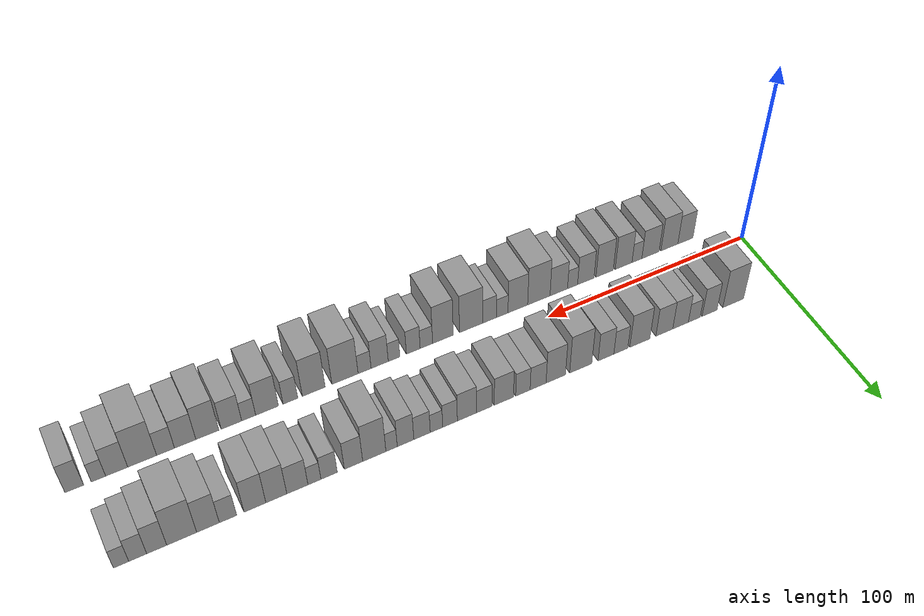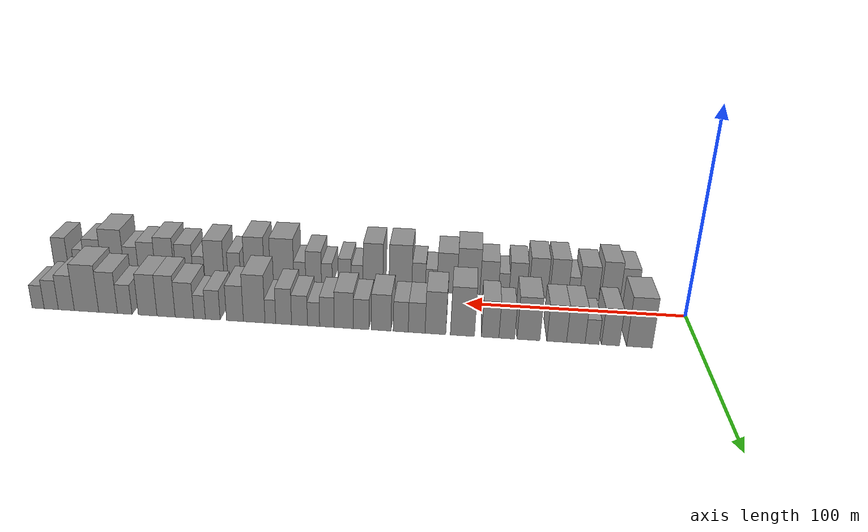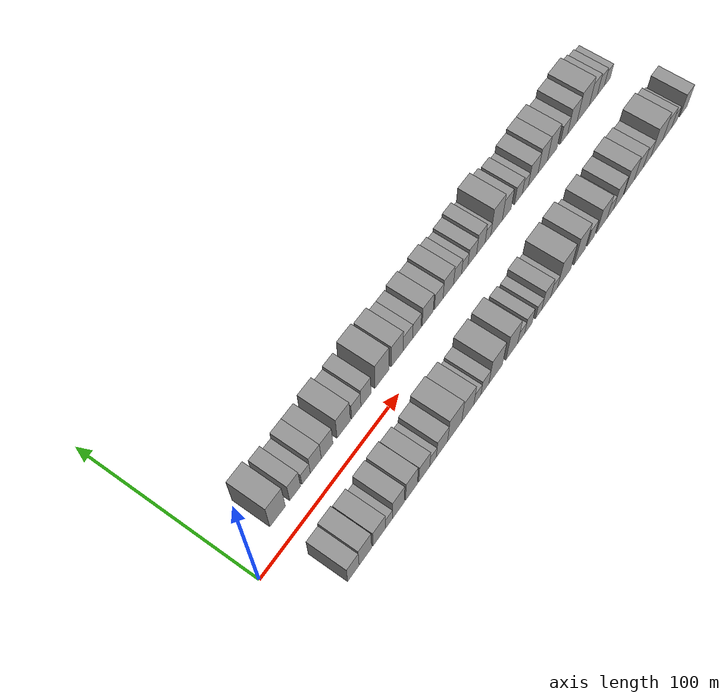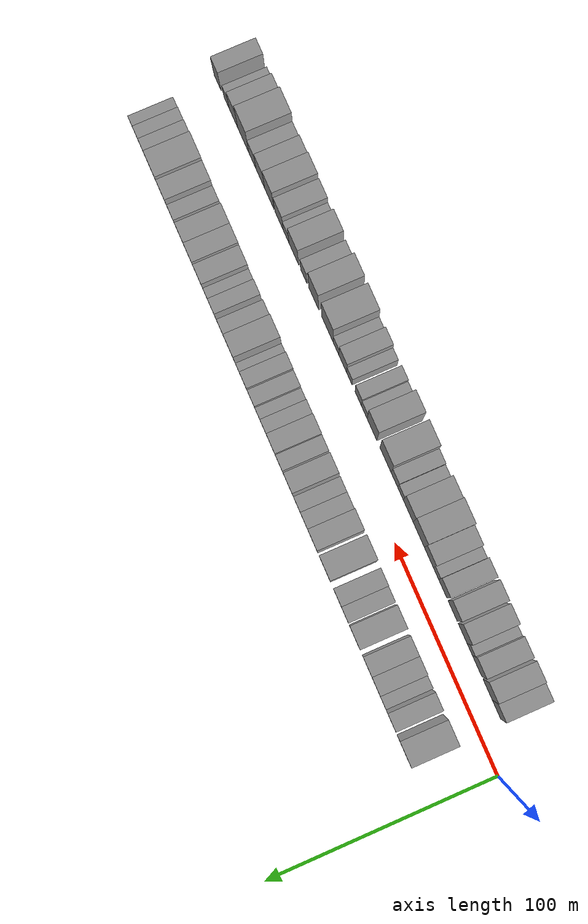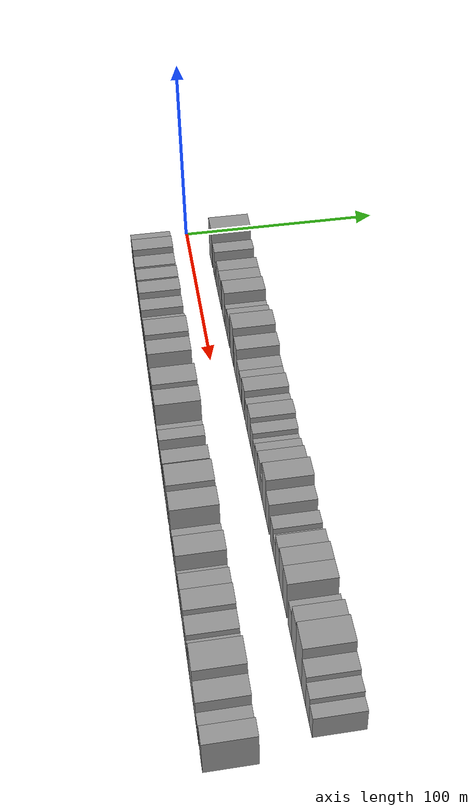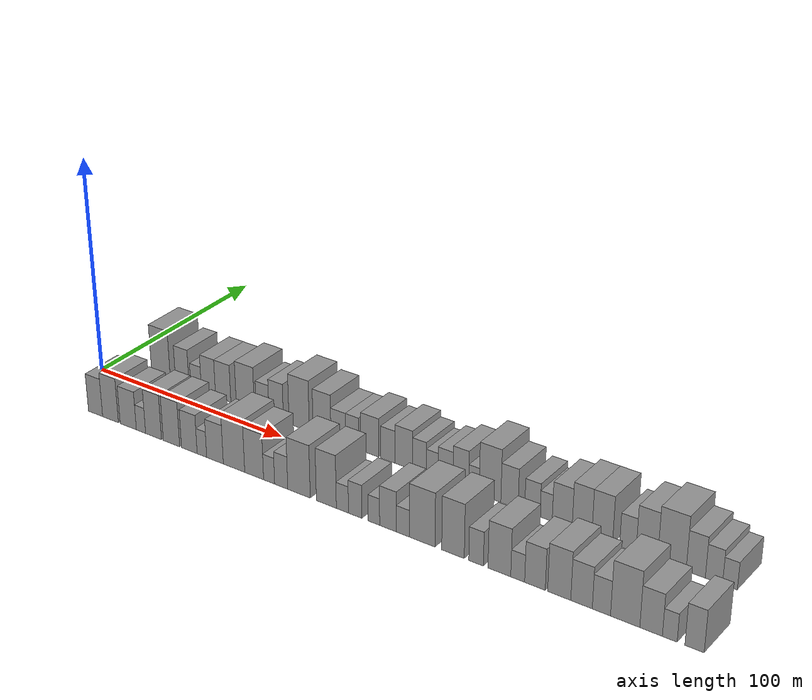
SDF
<sdf version="1.6">
 <world name="default">
  <scene>
   <sky><clouds><speed>12</speed></clouds></sky>
   <ambient>0.4 0.4 0.4 1</ambient>
   <background>0.7 0.7 0.7 1</background>
   <shadows>1</shadows>
  </scene>
  <gravity>0 0 -9.8066</gravity>
  <magnetic_field>6e-06 2.3e-05 -4.2e-05</magnetic_field>
  <physics default="0" name="default_physics" type="ode">
   <ode>
    <solver>
     <type>quick</type>
     <iters>10</iters>
     <sor>1.0</sor>
     <use_dynamic_moi_rescaling>0</use_dynamic_moi_rescaling>
    </solver>
    <constraints>
     <cfm>0</cfm>
     <erp>0.2</erp>
     <contact_max_correcting_vel>100</contact_max_correcting_vel>
     <contact_surface_layer>0.001</contact_surface_layer>
    </constraints>
   </ode>
   <max_step_size>0.004</max_step_size>
   <real_time_factor>1</real_time_factor>
   <real_time_update_rate>250</real_time_update_rate>
  </physics>
  <light name="sun" type="directional">
   <pose>0 0 10 0 0 0</pose>
   <diffuse>0.8 0.8 0.8 1</diffuse>
   <specular>0.2 0.2 0.2 1</specular>
   <attenuation>
    <range>1000</range>
    <constant>0.9</constant>
    <linear>0.01</linear>
    <quadratic>0.001</quadratic>
   </attenuation>
   <direction>-0.5 0.1 -0.9</direction>
  </light>
  <model name="building_1">
   <static>1</static>
   <pose>25.3760 20.0000 0 0.000000 0.000000 1.570796</pose>
   <link name="link">
    <pose>0 0 12.00 0 0 0</pose>
    <collision name="collision"><geometry><box><size>20.0000 10.7519 24.0000</size></box></geometry></collision>
    <visual name="visual">
     <cast_shadows>0</cast_shadows>
     <geometry><box><size>20.0000 10.7519 24.0000</size></box></geometry>
     <material>
      <script>
       <uri>model://grey_wall/materials/scripts</uri>
       <uri>model://grey_wall/materials/textures</uri>
       <name>vrc/grey_wall</name>
      </script>
     </material>
    </visual>
   </link>
  </model>
  <model name="building_2">
   <static>1</static>
   <pose>37.5861 20.0000 0 0.000000 0.000000 1.570796</pose>
   <link name="link">
    <pose>0 0 9.00 0 0 0</pose>
    <collision name="collision"><geometry><box><size>20.0000 7.6683 18.0000</size></box></geometry></collision>
    <visual name="visual">
     <cast_shadows>0</cast_shadows>
     <geometry><box><size>20.0000 7.6683 18.0000</size></box></geometry>
     <material>
      <script>
       <uri>model://grey_wall/materials/scripts</uri>
       <uri>model://grey_wall/materials/textures</uri>
       <name>vrc/grey_wall</name>
      </script>
     </material>
    </visual>
   </link>
  </model>
  <model name="building_3">
   <static>1</static>
   <pose>45.4054 20.0000 0 0.000000 0.000000 1.570796</pose>
   <link name="link">
    <pose>0 0 6.00 0 0 0</pose>
    <collision name="collision"><geometry><box><size>20.0000 5.9705 12.0000</size></box></geometry></collision>
    <visual name="visual">
     <cast_shadows>0</cast_shadows>
     <geometry><box><size>20.0000 5.9705 12.0000</size></box></geometry>
     <material>
      <script>
       <uri>model://grey_wall/materials/scripts</uri>
       <uri>model://grey_wall/materials/textures</uri>
       <name>vrc/grey_wall</name>
      </script>
     </material>
    </visual>
   </link>
  </model>
  <model name="building_4">
   <static>1</static>
   <pose>52.3289 20.0000 0 0.000000 0.000000 1.570796</pose>
   <link name="link">
    <pose>0 0 9.00 0 0 0</pose>
    <collision name="collision"><geometry><box><size>20.0000 7.8765 18.0000</size></box></geometry></collision>
    <visual name="visual">
     <cast_shadows>0</cast_shadows>
     <geometry><box><size>20.0000 7.8765 18.0000</size></box></geometry>
     <material>
      <script>
       <uri>model://grey_wall/materials/scripts</uri>
       <uri>model://grey_wall/materials/textures</uri>
       <name>vrc/grey_wall</name>
      </script>
     </material>
    </visual>
   </link>
  </model>
  <model name="building_5">
   <static>1</static>
   <pose>60.4882 20.0000 0 0.000000 0.000000 1.570796</pose>
   <link name="link">
    <pose>0 0 9.00 0 0 0</pose>
    <collision name="collision"><geometry><box><size>20.0000 8.4420 18.0000</size></box></geometry></collision>
    <visual name="visual">
     <cast_shadows>0</cast_shadows>
     <geometry><box><size>20.0000 8.4420 18.0000</size></box></geometry>
     <material>
      <script>
       <uri>model://grey_wall/materials/scripts</uri>
       <uri>model://grey_wall/materials/textures</uri>
       <name>vrc/grey_wall</name>
      </script>
     </material>
    </visual>
   </link>
  </model>
  <model name="building_6">
   <static>1</static>
   <pose>72.6612 20.0000 0 0.000000 0.000000 1.570796</pose>
   <link name="link">
    <pose>0 0 10.50 0 0 0</pose>
    <collision name="collision"><geometry><box><size>20.0000 9.9039 21.0000</size></box></geometry></collision>
    <visual name="visual">
     <cast_shadows>0</cast_shadows>
     <geometry><box><size>20.0000 9.9039 21.0000</size></box></geometry>
     <material>
      <script>
       <uri>model://grey_wall/materials/scripts</uri>
       <uri>model://grey_wall/materials/textures</uri>
       <name>vrc/grey_wall</name>
      </script>
     </material>
    </visual>
   </link>
  </model>
  <model name="building_7">
   <static>1</static>
   <pose>82.0439 20.0000 0 0.000000 0.000000 1.570796</pose>
   <link name="link">
    <pose>0 0 7.50 0 0 0</pose>
    <collision name="collision"><geometry><box><size>20.0000 6.8616 15.0000</size></box></geometry></collision>
    <visual name="visual">
     <cast_shadows>0</cast_shadows>
     <geometry><box><size>20.0000 6.8616 15.0000</size></box></geometry>
     <material>
      <script>
       <uri>model://grey_wall/materials/scripts</uri>
       <uri>model://grey_wall/materials/textures</uri>
       <name>vrc/grey_wall</name>
      </script>
     </material>
    </visual>
   </link>
  </model>
  <model name="building_8">
   <static>1</static>
   <pose>89.3051 20.0000 0 0.000000 0.000000 1.570796</pose>
   <link name="link">
    <pose>0 0 9.00 0 0 0</pose>
    <collision name="collision"><geometry><box><size>20.0000 7.6608 18.0000</size></box></geometry></collision>
    <visual name="visual">
     <cast_shadows>0</cast_shadows>
     <geometry><box><size>20.0000 7.6608 18.0000</size></box></geometry>
     <material>
      <script>
       <uri>model://grey_wall/materials/scripts</uri>
       <uri>model://grey_wall/materials/textures</uri>
       <name>vrc/grey_wall</name>
      </script>
     </material>
    </visual>
   </link>
  </model>
  <model name="building_9">
   <static>1</static>
   <pose>101.4516 20.0000 0 0.000000 0.000000 1.570796</pose>
   <link name="link">
    <pose>0 0 12.00 0 0 0</pose>
    <collision name="collision"><geometry><box><size>20.0000 10.6323 24.0000</size></box></geometry></collision>
    <visual name="visual">
     <cast_shadows>0</cast_shadows>
     <geometry><box><size>20.0000 10.6323 24.0000</size></box></geometry>
     <material>
      <script>
       <uri>model://grey_wall/materials/scripts</uri>
       <uri>model://grey_wall/materials/textures</uri>
       <name>vrc/grey_wall</name>
      </script>
     </material>
    </visual>
   </link>
  </model>
  <model name="building_10">
   <static>1</static>
   <pose>113.3578 20.0000 0 0.000000 0.000000 1.570796</pose>
   <link name="link">
    <pose>0 0 10.50 0 0 0</pose>
    <collision name="collision"><geometry><box><size>20.0000 9.1799 21.0000</size></box></geometry></collision>
    <visual name="visual">
     <cast_shadows>0</cast_shadows>
     <geometry><box><size>20.0000 9.1799 21.0000</size></box></geometry>
     <material>
      <script>
       <uri>model://grey_wall/materials/scripts</uri>
       <uri>model://grey_wall/materials/textures</uri>
       <name>vrc/grey_wall</name>
      </script>
     </material>
    </visual>
   </link>
  </model>
  <model name="building_11">
   <static>1</static>
   <pose>121.6955 20.0000 0 0.000000 0.000000 1.570796</pose>
   <link name="link">
    <pose>0 0 7.50 0 0 0</pose>
    <collision name="collision"><geometry><box><size>20.0000 7.4956 15.0000</size></box></geometry></collision>
    <visual name="visual">
     <cast_shadows>0</cast_shadows>
     <geometry><box><size>20.0000 7.4956 15.0000</size></box></geometry>
     <material>
      <script>
       <uri>model://grey_wall/materials/scripts</uri>
       <uri>model://grey_wall/materials/textures</uri>
       <name>vrc/grey_wall</name>
      </script>
     </material>
    </visual>
   </link>
  </model>
  <model name="building_12">
   <static>1</static>
   <pose>128.8012 20.0000 0 0.000000 0.000000 1.570796</pose>
   <link name="link">
    <pose>0 0 7.50 0 0 0</pose>
    <collision name="collision"><geometry><box><size>20.0000 6.7157 15.0000</size></box></geometry></collision>
    <visual name="visual">
     <cast_shadows>0</cast_shadows>
     <geometry><box><size>20.0000 6.7157 15.0000</size></box></geometry>
     <material>
      <script>
       <uri>model://grey_wall/materials/scripts</uri>
       <uri>model://grey_wall/materials/textures</uri>
       <name>vrc/grey_wall</name>
      </script>
     </material>
    </visual>
   </link>
  </model>
  <model name="building_13">
   <static>1</static>
   <pose>137.6105 20.0000 0 0.000000 0.000000 1.570796</pose>
   <link name="link">
    <pose>0 0 9.00 0 0 0</pose>
    <collision name="collision"><geometry><box><size>20.0000 8.9029 18.0000</size></box></geometry></collision>
    <visual name="visual">
     <cast_shadows>0</cast_shadows>
     <geometry><box><size>20.0000 8.9029 18.0000</size></box></geometry>
     <material>
      <script>
       <uri>model://grey_wall/materials/scripts</uri>
       <uri>model://grey_wall/materials/textures</uri>
       <name>vrc/grey_wall</name>
      </script>
     </material>
    </visual>
   </link>
  </model>
  <model name="building_14">
   <static>1</static>
   <pose>146.5816 20.0000 0 0.000000 0.000000 1.570796</pose>
   <link name="link">
    <pose>0 0 7.50 0 0 0</pose>
    <collision name="collision"><geometry><box><size>20.0000 7.0394 15.0000</size></box></geometry></collision>
    <visual name="visual">
     <cast_shadows>0</cast_shadows>
     <geometry><box><size>20.0000 7.0394 15.0000</size></box></geometry>
     <material>
      <script>
       <uri>model://grey_wall/materials/scripts</uri>
       <uri>model://grey_wall/materials/textures</uri>
       <name>vrc/grey_wall</name>
      </script>
     </material>
    </visual>
   </link>
  </model>
  <model name="building_15">
   <static>1</static>
   <pose>154.4547 20.0000 0 0.000000 0.000000 1.570796</pose>
   <link name="link">
    <pose>0 0 9.00 0 0 0</pose>
    <collision name="collision"><geometry><box><size>20.0000 8.7069 18.0000</size></box></geometry></collision>
    <visual name="visual">
     <cast_shadows>0</cast_shadows>
     <geometry><box><size>20.0000 8.7069 18.0000</size></box></geometry>
     <material>
      <script>
       <uri>model://grey_wall/materials/scripts</uri>
       <uri>model://grey_wall/materials/textures</uri>
       <name>vrc/grey_wall</name>
      </script>
     </material>
    </visual>
   </link>
  </model>
  <model name="building_16">
   <static>1</static>
   <pose>162.1069 20.0000 0 0.000000 0.000000 1.570796</pose>
   <link name="link">
    <pose>0 0 7.50 0 0 0</pose>
    <collision name="collision"><geometry><box><size>20.0000 6.5975 15.0000</size></box></geometry></collision>
    <visual name="visual">
     <cast_shadows>0</cast_shadows>
     <geometry><box><size>20.0000 6.5975 15.0000</size></box></geometry>
     <material>
      <script>
       <uri>model://grey_wall/materials/scripts</uri>
       <uri>model://grey_wall/materials/textures</uri>
       <name>vrc/grey_wall</name>
      </script>
     </material>
    </visual>
   </link>
  </model>
  <model name="building_17">
   <static>1</static>
   <pose>168.1742 20.0000 0 0.000000 0.000000 1.570796</pose>
   <link name="link">
    <pose>0 0 6.00 0 0 0</pose>
    <collision name="collision"><geometry><box><size>20.0000 5.5370 12.0000</size></box></geometry></collision>
    <visual name="visual">
     <cast_shadows>0</cast_shadows>
     <geometry><box><size>20.0000 5.5370 12.0000</size></box></geometry>
     <material>
      <script>
       <uri>model://grey_wall/materials/scripts</uri>
       <uri>model://grey_wall/materials/textures</uri>
       <name>vrc/grey_wall</name>
      </script>
     </material>
    </visual>
   </link>
  </model>
  <model name="building_18">
   <static>1</static>
   <pose>174.5783 20.0000 0 0.000000 0.000000 1.570796</pose>
   <link name="link">
    <pose>0 0 7.50 0 0 0</pose>
    <collision name="collision"><geometry><box><size>20.0000 7.2712 15.0000</size></box></geometry></collision>
    <visual name="visual">
     <cast_shadows>0</cast_shadows>
     <geometry><box><size>20.0000 7.2712 15.0000</size></box></geometry>
     <material>
      <script>
       <uri>model://grey_wall/materials/scripts</uri>
       <uri>model://grey_wall/materials/textures</uri>
       <name>vrc/grey_wall</name>
      </script>
     </material>
    </visual>
   </link>
  </model>
  <model name="building_19">
   <static>1</static>
   <pose>181.8571 20.0000 0 0.000000 0.000000 1.570796</pose>
   <link name="link">
    <pose>0 0 9.00 0 0 0</pose>
    <collision name="collision"><geometry><box><size>20.0000 7.2865 18.0000</size></box></geometry></collision>
    <visual name="visual">
     <cast_shadows>0</cast_shadows>
     <geometry><box><size>20.0000 7.2865 18.0000</size></box></geometry>
     <material>
      <script>
       <uri>model://grey_wall/materials/scripts</uri>
       <uri>model://grey_wall/materials/textures</uri>
       <name>vrc/grey_wall</name>
      </script>
     </material>
    </visual>
   </link>
  </model>
  <model name="building_20">
   <static>1</static>
   <pose>187.9732 20.0000 0 0.000000 0.000000 1.570796</pose>
   <link name="link">
    <pose>0 0 6.00 0 0 0</pose>
    <collision name="collision"><geometry><box><size>20.0000 4.9458 12.0000</size></box></geometry></collision>
    <visual name="visual">
     <cast_shadows>0</cast_shadows>
     <geometry><box><size>20.0000 4.9458 12.0000</size></box></geometry>
     <material>
      <script>
       <uri>model://grey_wall/materials/scripts</uri>
       <uri>model://grey_wall/materials/textures</uri>
       <name>vrc/grey_wall</name>
      </script>
     </material>
    </visual>
   </link>
  </model>
  <model name="building_21">
   <static>1</static>
   <pose>195.4713 20.0000 0 0.000000 0.000000 1.570796</pose>
   <link name="link">
    <pose>0 0 12.00 0 0 0</pose>
    <collision name="collision"><geometry><box><size>20.0000 10.0504 24.0000</size></box></geometry></collision>
    <visual name="visual">
     <cast_shadows>0</cast_shadows>
     <geometry><box><size>20.0000 10.0504 24.0000</size></box></geometry>
     <material>
      <script>
       <uri>model://grey_wall/materials/scripts</uri>
       <uri>model://grey_wall/materials/textures</uri>
       <name>vrc/grey_wall</name>
      </script>
     </material>
    </visual>
   </link>
  </model>
  <model name="building_22">
   <static>1</static>
   <pose>204.4331 20.0000 0 0.000000 0.000000 1.570796</pose>
   <link name="link">
    <pose>0 0 9.00 0 0 0</pose>
    <collision name="collision"><geometry><box><size>20.0000 7.8732 18.0000</size></box></geometry></collision>
    <visual name="visual">
     <cast_shadows>0</cast_shadows>
     <geometry><box><size>20.0000 7.8732 18.0000</size></box></geometry>
     <material>
      <script>
       <uri>model://grey_wall/materials/scripts</uri>
       <uri>model://grey_wall/materials/textures</uri>
       <name>vrc/grey_wall</name>
      </script>
     </material>
    </visual>
   </link>
  </model>
  <model name="building_23">
   <static>1</static>
   <pose>214.8274 20.0000 0 0.000000 0.000000 1.570796</pose>
   <link name="link">
    <pose>0 0 7.50 0 0 0</pose>
    <collision name="collision"><geometry><box><size>20.0000 6.9155 15.0000</size></box></geometry></collision>
    <visual name="visual">
     <cast_shadows>0</cast_shadows>
     <geometry><box><size>20.0000 6.9155 15.0000</size></box></geometry>
     <material>
      <script>
       <uri>model://grey_wall/materials/scripts</uri>
       <uri>model://grey_wall/materials/textures</uri>
       <name>vrc/grey_wall</name>
      </script>
     </material>
    </visual>
   </link>
  </model>
  <model name="building_24">
   <static>1</static>
   <pose>221.0099 20.0000 0 0.000000 0.000000 1.570796</pose>
   <link name="link">
    <pose>0 0 6.00 0 0 0</pose>
    <collision name="collision"><geometry><box><size>20.0000 5.4495 12.0000</size></box></geometry></collision>
    <visual name="visual">
     <cast_shadows>0</cast_shadows>
     <geometry><box><size>20.0000 5.4495 12.0000</size></box></geometry>
     <material>
      <script>
       <uri>model://grey_wall/materials/scripts</uri>
       <uri>model://grey_wall/materials/textures</uri>
       <name>vrc/grey_wall</name>
      </script>
     </material>
    </visual>
   </link>
  </model>
  <model name="building_25">
   <static>1</static>
   <pose>228.1481 20.0000 0 0.000000 0.000000 1.570796</pose>
   <link name="link">
    <pose>0 0 9.00 0 0 0</pose>
    <collision name="collision"><geometry><box><size>20.0000 8.8268 18.0000</size></box></geometry></collision>
    <visual name="visual">
     <cast_shadows>0</cast_shadows>
     <geometry><box><size>20.0000 8.8268 18.0000</size></box></geometry>
     <material>
      <script>
       <uri>model://grey_wall/materials/scripts</uri>
       <uri>model://grey_wall/materials/textures</uri>
       <name>vrc/grey_wall</name>
      </script>
     </material>
    </visual>
   </link>
  </model>
  <model name="building_26">
   <static>1</static>
   <pose>236.8803 20.0000 0 0.000000 0.000000 1.570796</pose>
   <link name="link">
    <pose>0 0 10.50 0 0 0</pose>
    <collision name="collision"><geometry><box><size>20.0000 8.6376 21.0000</size></box></geometry></collision>
    <visual name="visual">
     <cast_shadows>0</cast_shadows>
     <geometry><box><size>20.0000 8.6376 21.0000</size></box></geometry>
     <material>
      <script>
       <uri>model://grey_wall/materials/scripts</uri>
       <uri>model://grey_wall/materials/textures</uri>
       <name>vrc/grey_wall</name>
      </script>
     </material>
    </visual>
   </link>
  </model>
  <model name="building_27">
   <static>1</static>
   <pose>245.6707 20.0000 0 0.000000 0.000000 1.570796</pose>
   <link name="link">
    <pose>0 0 10.50 0 0 0</pose>
    <collision name="collision"><geometry><box><size>20.0000 8.9432 21.0000</size></box></geometry></collision>
    <visual name="visual">
     <cast_shadows>0</cast_shadows>
     <geometry><box><size>20.0000 8.9432 21.0000</size></box></geometry>
     <material>
      <script>
       <uri>model://grey_wall/materials/scripts</uri>
       <uri>model://grey_wall/materials/textures</uri>
       <name>vrc/grey_wall</name>
      </script>
     </material>
    </visual>
   </link>
  </model>
  <model name="building_28">
   <static>1</static>
   <pose>256.6422 20.0000 0 0.000000 0.000000 1.570796</pose>
   <link name="link">
    <pose>0 0 7.50 0 0 0</pose>
    <collision name="collision"><geometry><box><size>20.0000 6.9999 15.0000</size></box></geometry></collision>
    <visual name="visual">
     <cast_shadows>0</cast_shadows>
     <geometry><box><size>20.0000 6.9999 15.0000</size></box></geometry>
     <material>
      <script>
       <uri>model://grey_wall/materials/scripts</uri>
       <uri>model://grey_wall/materials/textures</uri>
       <name>vrc/grey_wall</name>
      </script>
     </material>
    </visual>
   </link>
  </model>
  <model name="building_29">
   <static>1</static>
   <pose>264.6668 20.0000 0 0.000000 0.000000 1.570796</pose>
   <link name="link">
    <pose>0 0 10.50 0 0 0</pose>
    <collision name="collision"><geometry><box><size>20.0000 9.0493 21.0000</size></box></geometry></collision>
    <visual name="visual">
     <cast_shadows>0</cast_shadows>
     <geometry><box><size>20.0000 9.0493 21.0000</size></box></geometry>
     <material>
      <script>
       <uri>model://grey_wall/materials/scripts</uri>
       <uri>model://grey_wall/materials/textures</uri>
       <name>vrc/grey_wall</name>
      </script>
     </material>
    </visual>
   </link>
  </model>
  <model name="building_30">
   <static>1</static>
   <pose>275.1090 20.0000 0 0.000000 0.000000 1.570796</pose>
   <link name="link">
    <pose>0 0 12.00 0 0 0</pose>
    <collision name="collision"><geometry><box><size>20.0000 11.8351 24.0000</size></box></geometry></collision>
    <visual name="visual">
     <cast_shadows>0</cast_shadows>
     <geometry><box><size>20.0000 11.8351 24.0000</size></box></geometry>
     <material>
      <script>
       <uri>model://grey_wall/materials/scripts</uri>
       <uri>model://grey_wall/materials/textures</uri>
       <name>vrc/grey_wall</name>
      </script>
     </material>
    </visual>
   </link>
  </model>
  <model name="building_31">
   <static>1</static>
   <pose>284.9398 20.0000 0 0.000000 0.000000 1.570796</pose>
   <link name="link">
    <pose>0 0 9.00 0 0 0</pose>
    <collision name="collision"><geometry><box><size>20.0000 7.8267 18.0000</size></box></geometry></collision>
    <visual name="visual">
     <cast_shadows>0</cast_shadows>
     <geometry><box><size>20.0000 7.8267 18.0000</size></box></geometry>
     <material>
      <script>
       <uri>model://grey_wall/materials/scripts</uri>
       <uri>model://grey_wall/materials/textures</uri>
       <name>vrc/grey_wall</name>
      </script>
     </material>
    </visual>
   </link>
  </model>
  <model name="building_32">
   <static>1</static>
   <pose>292.3297 20.0000 0 0.000000 0.000000 1.570796</pose>
   <link name="link">
    <pose>0 0 7.50 0 0 0</pose>
    <collision name="collision"><geometry><box><size>20.0000 6.9531 15.0000</size></box></geometry></collision>
    <visual name="visual">
     <cast_shadows>0</cast_shadows>
     <geometry><box><size>20.0000 6.9531 15.0000</size></box></geometry>
     <material>
      <script>
       <uri>model://grey_wall/materials/scripts</uri>
       <uri>model://grey_wall/materials/textures</uri>
       <name>vrc/grey_wall</name>
      </script>
     </material>
    </visual>
   </link>
  </model>
  <model name="building_33">
   <static>1</static>
   <pose>298.7675 20.0000 0 0.000000 0.000000 1.570796</pose>
   <link name="link">
    <pose>0 0 6.00 0 0 0</pose>
    <collision name="collision"><geometry><box><size>20.0000 5.9225 12.0000</size></box></geometry></collision>
    <visual name="visual">
     <cast_shadows>0</cast_shadows>
     <geometry><box><size>20.0000 5.9225 12.0000</size></box></geometry>
     <material>
      <script>
       <uri>model://grey_wall/materials/scripts</uri>
       <uri>model://grey_wall/materials/textures</uri>
       <name>vrc/grey_wall</name>
      </script>
     </material>
    </visual>
   </link>
  </model>
  <model name="building_34">
   <static>1</static>
   <pose>24.0289 -20.0000 0 0.000000 0.000000 1.570796</pose>
   <link name="link">
    <pose>0 0 9.00 0 0 0</pose>
    <collision name="collision"><geometry><box><size>20.0000 8.0577 18.0000</size></box></geometry></collision>
    <visual name="visual">
     <cast_shadows>0</cast_shadows>
     <geometry><box><size>20.0000 8.0577 18.0000</size></box></geometry>
     <material>
      <script>
       <uri>model://grey_wall/materials/scripts</uri>
       <uri>model://grey_wall/materials/textures</uri>
       <name>vrc/grey_wall</name>
      </script>
     </material>
    </visual>
   </link>
  </model>
  <model name="building_35">
   <static>1</static>
   <pose>32.5170 -20.0000 0 0.000000 0.000000 1.570796</pose>
   <link name="link">
    <pose>0 0 10.50 0 0 0</pose>
    <collision name="collision"><geometry><box><size>20.0000 8.9186 21.0000</size></box></geometry></collision>
    <visual name="visual">
     <cast_shadows>0</cast_shadows>
     <geometry><box><size>20.0000 8.9186 21.0000</size></box></geometry>
     <material>
      <script>
       <uri>model://grey_wall/materials/scripts</uri>
       <uri>model://grey_wall/materials/textures</uri>
       <name>vrc/grey_wall</name>
      </script>
     </material>
    </visual>
   </link>
  </model>
  <model name="building_36">
   <static>1</static>
   <pose>42.4758 -20.0000 0 0.000000 0.000000 1.570796</pose>
   <link name="link">
    <pose>0 0 9.00 0 0 0</pose>
    <collision name="collision"><geometry><box><size>20.0000 8.9990 18.0000</size></box></geometry></collision>
    <visual name="visual">
     <cast_shadows>0</cast_shadows>
     <geometry><box><size>20.0000 8.9990 18.0000</size></box></geometry>
     <material>
      <script>
       <uri>model://grey_wall/materials/scripts</uri>
       <uri>model://grey_wall/materials/textures</uri>
       <name>vrc/grey_wall</name>
      </script>
     </material>
    </visual>
   </link>
  </model>
  <model name="building_37">
   <static>1</static>
   <pose>49.5360 -20.0000 0 0.000000 0.000000 1.570796</pose>
   <link name="link">
    <pose>0 0 6.00 0 0 0</pose>
    <collision name="collision"><geometry><box><size>20.0000 5.1213 12.0000</size></box></geometry></collision>
    <visual name="visual">
     <cast_shadows>0</cast_shadows>
     <geometry><box><size>20.0000 5.1213 12.0000</size></box></geometry>
     <material>
      <script>
       <uri>model://grey_wall/materials/scripts</uri>
       <uri>model://grey_wall/materials/textures</uri>
       <name>vrc/grey_wall</name>
      </script>
     </material>
    </visual>
   </link>
  </model>
  <model name="building_38">
   <static>1</static>
   <pose>56.4405 -20.0000 0 0.000000 0.000000 1.570796</pose>
   <link name="link">
    <pose>0 0 10.50 0 0 0</pose>
    <collision name="collision"><geometry><box><size>20.0000 8.6876 21.0000</size></box></geometry></collision>
    <visual name="visual">
     <cast_shadows>0</cast_shadows>
     <geometry><box><size>20.0000 8.6876 21.0000</size></box></geometry>
     <material>
      <script>
       <uri>model://grey_wall/materials/scripts</uri>
       <uri>model://grey_wall/materials/textures</uri>
       <name>vrc/grey_wall</name>
      </script>
     </material>
    </visual>
   </link>
  </model>
  <model name="building_39">
   <static>1</static>
   <pose>66.2033 -20.0000 0 0.000000 0.000000 1.570796</pose>
   <link name="link">
    <pose>0 0 10.50 0 0 0</pose>
    <collision name="collision"><geometry><box><size>20.0000 8.8380 21.0000</size></box></geometry></collision>
    <visual name="visual">
     <cast_shadows>0</cast_shadows>
     <geometry><box><size>20.0000 8.8380 21.0000</size></box></geometry>
     <material>
      <script>
       <uri>model://grey_wall/materials/scripts</uri>
       <uri>model://grey_wall/materials/textures</uri>
       <name>vrc/grey_wall</name>
      </script>
     </material>
    </visual>
   </link>
  </model>
  <model name="building_40">
   <static>1</static>
   <pose>75.7831 -20.0000 0 0.000000 0.000000 1.570796</pose>
   <link name="link">
    <pose>0 0 9.00 0 0 0</pose>
    <collision name="collision"><geometry><box><size>20.0000 8.3216 18.0000</size></box></geometry></collision>
    <visual name="visual">
     <cast_shadows>0</cast_shadows>
     <geometry><box><size>20.0000 8.3216 18.0000</size></box></geometry>
     <material>
      <script>
       <uri>model://grey_wall/materials/scripts</uri>
       <uri>model://grey_wall/materials/textures</uri>
       <name>vrc/grey_wall</name>
      </script>
     </material>
    </visual>
   </link>
  </model>
  <model name="building_41">
   <static>1</static>
   <pose>82.4809 -20.0000 0 0.000000 0.000000 1.570796</pose>
   <link name="link">
    <pose>0 0 6.00 0 0 0</pose>
    <collision name="collision"><geometry><box><size>20.0000 5.0739 12.0000</size></box></geometry></collision>
    <visual name="visual">
     <cast_shadows>0</cast_shadows>
     <geometry><box><size>20.0000 5.0739 12.0000</size></box></geometry>
     <material>
      <script>
       <uri>model://grey_wall/materials/scripts</uri>
       <uri>model://grey_wall/materials/textures</uri>
       <name>vrc/grey_wall</name>
      </script>
     </material>
    </visual>
   </link>
  </model>
  <model name="building_42">
   <static>1</static>
   <pose>89.3772 -20.0000 0 0.000000 0.000000 1.570796</pose>
   <link name="link">
    <pose>0 0 9.00 0 0 0</pose>
    <collision name="collision"><geometry><box><size>20.0000 8.7188 18.0000</size></box></geometry></collision>
    <visual name="visual">
     <cast_shadows>0</cast_shadows>
     <geometry><box><size>20.0000 8.7188 18.0000</size></box></geometry>
     <material>
      <script>
       <uri>model://grey_wall/materials/scripts</uri>
       <uri>model://grey_wall/materials/textures</uri>
       <name>vrc/grey_wall</name>
      </script>
     </material>
    </visual>
   </link>
  </model>
  <model name="building_43">
   <static>1</static>
   <pose>99.2743 -20.0000 0 0.000000 0.000000 1.570796</pose>
   <link name="link">
    <pose>0 0 12.00 0 0 0</pose>
    <collision name="collision"><geometry><box><size>20.0000 11.0754 24.0000</size></box></geometry></collision>
    <visual name="visual">
     <cast_shadows>0</cast_shadows>
     <geometry><box><size>20.0000 11.0754 24.0000</size></box></geometry>
     <material>
      <script>
       <uri>model://grey_wall/materials/scripts</uri>
       <uri>model://grey_wall/materials/textures</uri>
       <name>vrc/grey_wall</name>
      </script>
     </material>
    </visual>
   </link>
  </model>
  <model name="building_44">
   <static>1</static>
   <pose>109.6215 -20.0000 0 0.000000 0.000000 1.570796</pose>
   <link name="link">
    <pose>0 0 10.50 0 0 0</pose>
    <collision name="collision"><geometry><box><size>20.0000 9.6189 21.0000</size></box></geometry></collision>
    <visual name="visual">
     <cast_shadows>0</cast_shadows>
     <geometry><box><size>20.0000 9.6189 21.0000</size></box></geometry>
     <material>
      <script>
       <uri>model://grey_wall/materials/scripts</uri>
       <uri>model://grey_wall/materials/textures</uri>
       <name>vrc/grey_wall</name>
      </script>
     </material>
    </visual>
   </link>
  </model>
  <model name="building_45">
   <static>1</static>
   <pose>117.2234 -20.0000 0 0.000000 0.000000 1.570796</pose>
   <link name="link">
    <pose>0 0 6.00 0 0 0</pose>
    <collision name="collision"><geometry><box><size>20.0000 5.5849 12.0000</size></box></geometry></collision>
    <visual name="visual">
     <cast_shadows>0</cast_shadows>
     <geometry><box><size>20.0000 5.5849 12.0000</size></box></geometry>
     <material>
      <script>
       <uri>model://grey_wall/materials/scripts</uri>
       <uri>model://grey_wall/materials/textures</uri>
       <name>vrc/grey_wall</name>
      </script>
     </material>
    </visual>
   </link>
  </model>
  <model name="building_46">
   <static>1</static>
   <pose>123.3081 -20.0000 0 0.000000 0.000000 1.570796</pose>
   <link name="link">
    <pose>0 0 7.50 0 0 0</pose>
    <collision name="collision"><geometry><box><size>20.0000 6.5844 15.0000</size></box></geometry></collision>
    <visual name="visual">
     <cast_shadows>0</cast_shadows>
     <geometry><box><size>20.0000 6.5844 15.0000</size></box></geometry>
     <material>
      <script>
       <uri>model://grey_wall/materials/scripts</uri>
       <uri>model://grey_wall/materials/textures</uri>
       <name>vrc/grey_wall</name>
      </script>
     </material>
    </visual>
   </link>
  </model>
  <model name="building_47">
   <static>1</static>
   <pose>132.1660 -20.0000 0 0.000000 0.000000 1.570796</pose>
   <link name="link">
    <pose>0 0 12.00 0 0 0</pose>
    <collision name="collision"><geometry><box><size>20.0000 11.1314 24.0000</size></box></geometry></collision>
    <visual name="visual">
     <cast_shadows>0</cast_shadows>
     <geometry><box><size>20.0000 11.1314 24.0000</size></box></geometry>
     <material>
      <script>
       <uri>model://grey_wall/materials/scripts</uri>
       <uri>model://grey_wall/materials/textures</uri>
       <name>vrc/grey_wall</name>
      </script>
     </material>
    </visual>
   </link>
  </model>
  <model name="building_48">
   <static>1</static>
   <pose>145.5856 -20.0000 0 0.000000 0.000000 1.570796</pose>
   <link name="link">
    <pose>0 0 12.00 0 0 0</pose>
    <collision name="collision"><geometry><box><size>20.0000 9.7079 24.0000</size></box></geometry></collision>
    <visual name="visual">
     <cast_shadows>0</cast_shadows>
     <geometry><box><size>20.0000 9.7079 24.0000</size></box></geometry>
     <material>
      <script>
       <uri>model://grey_wall/materials/scripts</uri>
       <uri>model://grey_wall/materials/textures</uri>
       <name>vrc/grey_wall</name>
      </script>
     </material>
    </visual>
   </link>
  </model>
  <model name="building_49">
   <static>1</static>
   <pose>153.3522 -20.0000 0 0.000000 0.000000 1.570796</pose>
   <link name="link">
    <pose>0 0 6.00 0 0 0</pose>
    <collision name="collision"><geometry><box><size>20.0000 5.8252 12.0000</size></box></geometry></collision>
    <visual name="visual">
     <cast_shadows>0</cast_shadows>
     <geometry><box><size>20.0000 5.8252 12.0000</size></box></geometry>
     <material>
      <script>
       <uri>model://grey_wall/materials/scripts</uri>
       <uri>model://grey_wall/materials/textures</uri>
       <name>vrc/grey_wall</name>
      </script>
     </material>
    </visual>
   </link>
  </model>
  <model name="building_50">
   <static>1</static>
   <pose>159.4739 -20.0000 0 0.000000 0.000000 1.570796</pose>
   <link name="link">
    <pose>0 0 7.50 0 0 0</pose>
    <collision name="collision"><geometry><box><size>20.0000 6.4181 15.0000</size></box></geometry></collision>
    <visual name="visual">
     <cast_shadows>0</cast_shadows>
     <geometry><box><size>20.0000 6.4181 15.0000</size></box></geometry>
     <material>
      <script>
       <uri>model://grey_wall/materials/scripts</uri>
       <uri>model://grey_wall/materials/textures</uri>
       <name>vrc/grey_wall</name>
      </script>
     </material>
    </visual>
   </link>
  </model>
  <model name="building_51">
   <static>1</static>
   <pose>168.3621 -20.0000 0 0.000000 0.000000 1.570796</pose>
   <link name="link">
    <pose>0 0 6.00 0 0 0</pose>
    <collision name="collision"><geometry><box><size>20.0000 5.3583 12.0000</size></box></geometry></collision>
    <visual name="visual">
     <cast_shadows>0</cast_shadows>
     <geometry><box><size>20.0000 5.3583 12.0000</size></box></geometry>
     <material>
      <script>
       <uri>model://grey_wall/materials/scripts</uri>
       <uri>model://grey_wall/materials/textures</uri>
       <name>vrc/grey_wall</name>
      </script>
     </material>
    </visual>
   </link>
  </model>
  <model name="building_52">
   <static>1</static>
   <pose>174.9521 -20.0000 0 0.000000 0.000000 1.570796</pose>
   <link name="link">
    <pose>0 0 9.00 0 0 0</pose>
    <collision name="collision"><geometry><box><size>20.0000 7.8217 18.0000</size></box></geometry></collision>
    <visual name="visual">
     <cast_shadows>0</cast_shadows>
     <geometry><box><size>20.0000 7.8217 18.0000</size></box></geometry>
     <material>
      <script>
       <uri>model://grey_wall/materials/scripts</uri>
       <uri>model://grey_wall/materials/textures</uri>
       <name>vrc/grey_wall</name>
      </script>
     </material>
    </visual>
   </link>
  </model>
  <model name="building_53">
   <static>1</static>
   <pose>181.8191 -20.0000 0 0.000000 0.000000 1.570796</pose>
   <link name="link">
    <pose>0 0 6.00 0 0 0</pose>
    <collision name="collision"><geometry><box><size>20.0000 5.9123 12.0000</size></box></geometry></collision>
    <visual name="visual">
     <cast_shadows>0</cast_shadows>
     <geometry><box><size>20.0000 5.9123 12.0000</size></box></geometry>
     <material>
      <script>
       <uri>model://grey_wall/materials/scripts</uri>
       <uri>model://grey_wall/materials/textures</uri>
       <name>vrc/grey_wall</name>
      </script>
     </material>
    </visual>
   </link>
  </model>
  <model name="building_54">
   <static>1</static>
   <pose>190.6696 -20.0000 0 0.000000 0.000000 1.570796</pose>
   <link name="link">
    <pose>0 0 12.00 0 0 0</pose>
    <collision name="collision"><geometry><box><size>20.0000 11.7887 24.0000</size></box></geometry></collision>
    <visual name="visual">
     <cast_shadows>0</cast_shadows>
     <geometry><box><size>20.0000 11.7887 24.0000</size></box></geometry>
     <material>
      <script>
       <uri>model://grey_wall/materials/scripts</uri>
       <uri>model://grey_wall/materials/textures</uri>
       <name>vrc/grey_wall</name>
      </script>
     </material>
    </visual>
   </link>
  </model>
  <model name="building_55">
   <static>1</static>
   <pose>204.6117 -20.0000 0 0.000000 0.000000 1.570796</pose>
   <link name="link">
    <pose>0 0 12.00 0 0 0</pose>
    <collision name="collision"><geometry><box><size>20.0000 10.0955 24.0000</size></box></geometry></collision>
    <visual name="visual">
     <cast_shadows>0</cast_shadows>
     <geometry><box><size>20.0000 10.0955 24.0000</size></box></geometry>
     <material>
      <script>
       <uri>model://grey_wall/materials/scripts</uri>
       <uri>model://grey_wall/materials/textures</uri>
       <name>vrc/grey_wall</name>
      </script>
     </material>
    </visual>
   </link>
  </model>
  <model name="building_56">
   <static>1</static>
   <pose>214.8852 -20.0000 0 0.000000 0.000000 1.570796</pose>
   <link name="link">
    <pose>0 0 7.50 0 0 0</pose>
    <collision name="collision"><geometry><box><size>20.0000 6.4516 15.0000</size></box></geometry></collision>
    <visual name="visual">
     <cast_shadows>0</cast_shadows>
     <geometry><box><size>20.0000 6.4516 15.0000</size></box></geometry>
     <material>
      <script>
       <uri>model://grey_wall/materials/scripts</uri>
       <uri>model://grey_wall/materials/textures</uri>
       <name>vrc/grey_wall</name>
      </script>
     </material>
    </visual>
   </link>
  </model>
  <model name="building_57">
   <static>1</static>
   <pose>225.0558 -20.0000 0 0.000000 0.000000 1.570796</pose>
   <link name="link">
    <pose>0 0 10.50 0 0 0</pose>
    <collision name="collision"><geometry><box><size>20.0000 9.8895 21.0000</size></box></geometry></collision>
    <visual name="visual">
     <cast_shadows>0</cast_shadows>
     <geometry><box><size>20.0000 9.8895 21.0000</size></box></geometry>
     <material>
      <script>
       <uri>model://grey_wall/materials/scripts</uri>
       <uri>model://grey_wall/materials/textures</uri>
       <name>vrc/grey_wall</name>
      </script>
     </material>
    </visual>
   </link>
  </model>
  <model name="building_58">
   <static>1</static>
   <pose>232.9871 -20.0000 0 0.000000 0.000000 1.570796</pose>
   <link name="link">
    <pose>0 0 6.00 0 0 0</pose>
    <collision name="collision"><geometry><box><size>20.0000 5.9731 12.0000</size></box></geometry></collision>
    <visual name="visual">
     <cast_shadows>0</cast_shadows>
     <geometry><box><size>20.0000 5.9731 12.0000</size></box></geometry>
     <material>
      <script>
       <uri>model://grey_wall/materials/scripts</uri>
       <uri>model://grey_wall/materials/textures</uri>
       <name>vrc/grey_wall</name>
      </script>
     </material>
    </visual>
   </link>
  </model>
  <model name="building_59">
   <static>1</static>
   <pose>240.3480 -20.0000 0 0.000000 0.000000 1.570796</pose>
   <link name="link">
    <pose>0 0 9.00 0 0 0</pose>
    <collision name="collision"><geometry><box><size>20.0000 8.7487 18.0000</size></box></geometry></collision>
    <visual name="visual">
     <cast_shadows>0</cast_shadows>
     <geometry><box><size>20.0000 8.7487 18.0000</size></box></geometry>
     <material>
      <script>
       <uri>model://grey_wall/materials/scripts</uri>
       <uri>model://grey_wall/materials/textures</uri>
       <name>vrc/grey_wall</name>
      </script>
     </material>
    </visual>
   </link>
  </model>
  <model name="building_60">
   <static>1</static>
   <pose>250.5656 -20.0000 0 0.000000 0.000000 1.570796</pose>
   <link name="link">
    <pose>0 0 10.50 0 0 0</pose>
    <collision name="collision"><geometry><box><size>20.0000 9.6866 21.0000</size></box></geometry></collision>
    <visual name="visual">
     <cast_shadows>0</cast_shadows>
     <geometry><box><size>20.0000 9.6866 21.0000</size></box></geometry>
     <material>
      <script>
       <uri>model://grey_wall/materials/scripts</uri>
       <uri>model://grey_wall/materials/textures</uri>
       <name>vrc/grey_wall</name>
      </script>
     </material>
    </visual>
   </link>
  </model>
  <model name="building_61">
   <static>1</static>
   <pose>259.8431 -20.0000 0 0.000000 0.000000 1.570796</pose>
   <link name="link">
    <pose>0 0 9.00 0 0 0</pose>
    <collision name="collision"><geometry><box><size>20.0000 8.8684 18.0000</size></box></geometry></collision>
    <visual name="visual">
     <cast_shadows>0</cast_shadows>
     <geometry><box><size>20.0000 8.8684 18.0000</size></box></geometry>
     <material>
      <script>
       <uri>model://grey_wall/materials/scripts</uri>
       <uri>model://grey_wall/materials/textures</uri>
       <name>vrc/grey_wall</name>
      </script>
     </material>
    </visual>
   </link>
  </model>
  <model name="building_62">
   <static>1</static>
   <pose>267.9895 -20.0000 0 0.000000 0.000000 1.570796</pose>
   <link name="link">
    <pose>0 0 7.50 0 0 0</pose>
    <collision name="collision"><geometry><box><size>20.0000 7.4243 15.0000</size></box></geometry></collision>
    <visual name="visual">
     <cast_shadows>0</cast_shadows>
     <geometry><box><size>20.0000 7.4243 15.0000</size></box></geometry>
     <material>
      <script>
       <uri>model://grey_wall/materials/scripts</uri>
       <uri>model://grey_wall/materials/textures</uri>
       <name>vrc/grey_wall</name>
      </script>
     </material>
    </visual>
   </link>
  </model>
  <model name="building_63">
   <static>1</static>
   <pose>277.5924 -20.0000 0 0.000000 0.000000 1.570796</pose>
   <link name="link">
    <pose>0 0 12.00 0 0 0</pose>
    <collision name="collision"><geometry><box><size>20.0000 11.7815 24.0000</size></box></geometry></collision>
    <visual name="visual">
     <cast_shadows>0</cast_shadows>
     <geometry><box><size>20.0000 11.7815 24.0000</size></box></geometry>
     <material>
      <script>
       <uri>model://grey_wall/materials/scripts</uri>
       <uri>model://grey_wall/materials/textures</uri>
       <name>vrc/grey_wall</name>
      </script>
     </material>
    </visual>
   </link>
  </model>
  <model name="building_64">
   <static>1</static>
   <pose>287.9507 -20.0000 0 0.000000 0.000000 1.570796</pose>
   <link name="link">
    <pose>0 0 9.00 0 0 0</pose>
    <collision name="collision"><geometry><box><size>20.0000 8.9352 18.0000</size></box></geometry></collision>
    <visual name="visual">
     <cast_shadows>0</cast_shadows>
     <geometry><box><size>20.0000 8.9352 18.0000</size></box></geometry>
     <material>
      <script>
       <uri>model://grey_wall/materials/scripts</uri>
       <uri>model://grey_wall/materials/textures</uri>
       <name>vrc/grey_wall</name>
      </script>
     </material>
    </visual>
   </link>
  </model>
  <model name="building_65">
   <static>1</static>
   <pose>295.3069 -20.0000 0 0.000000 0.000000 1.570796</pose>
   <link name="link">
    <pose>0 0 6.00 0 0 0</pose>
    <collision name="collision"><geometry><box><size>20.0000 5.7771 12.0000</size></box></geometry></collision>
    <visual name="visual">
     <cast_shadows>0</cast_shadows>
     <geometry><box><size>20.0000 5.7771 12.0000</size></box></geometry>
     <material>
      <script>
       <uri>model://grey_wall/materials/scripts</uri>
       <uri>model://grey_wall/materials/textures</uri>
       <name>vrc/grey_wall</name>
      </script>
     </material>
    </visual>
   </link>
  </model>
  <model name="building_66">
   <static>1</static>
   <pose>304.9203 -20.0000 0 0.000000 0.000000 1.570796</pose>
   <link name="link">
    <pose>0 0 9.00 0 0 0</pose>
    <collision name="collision"><geometry><box><size>20.0000 7.4498 18.0000</size></box></geometry></collision>
    <visual name="visual">
     <cast_shadows>0</cast_shadows>
     <geometry><box><size>20.0000 7.4498 18.0000</size></box></geometry>
     <material>
      <script>
       <uri>model://grey_wall/materials/scripts</uri>
       <uri>model://grey_wall/materials/textures</uri>
       <name>vrc/grey_wall</name>
      </script>
     </material>
    </visual>
   </link>
  </model>
 </world>
</sdf>
